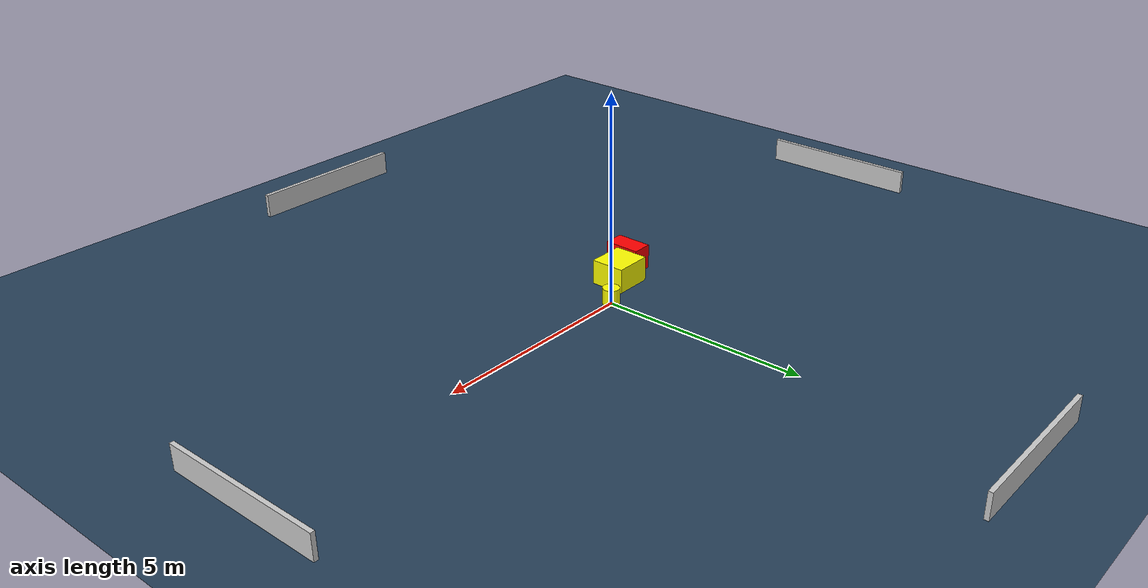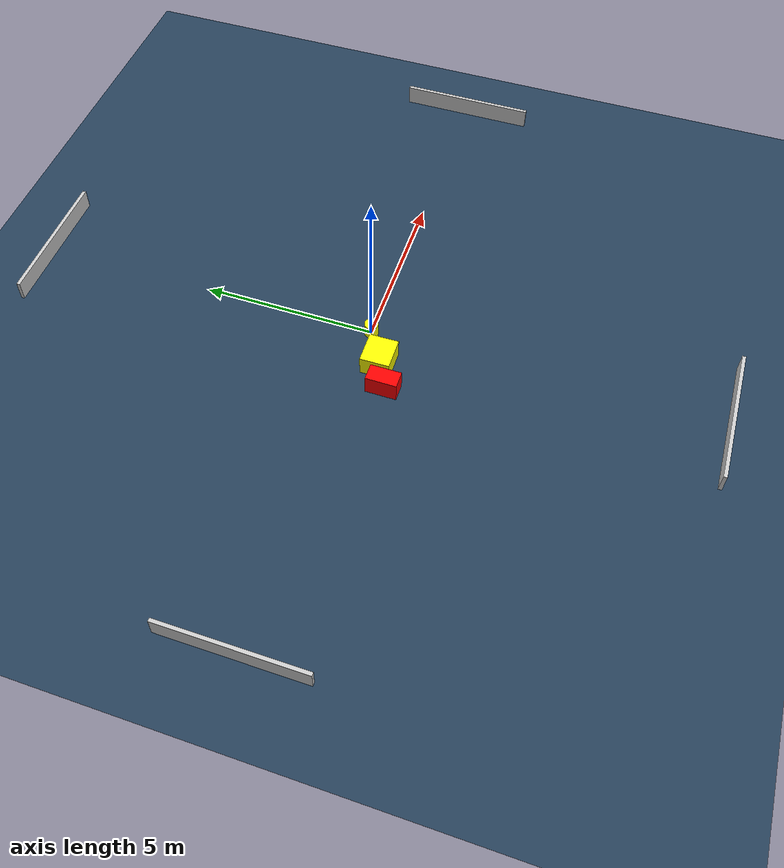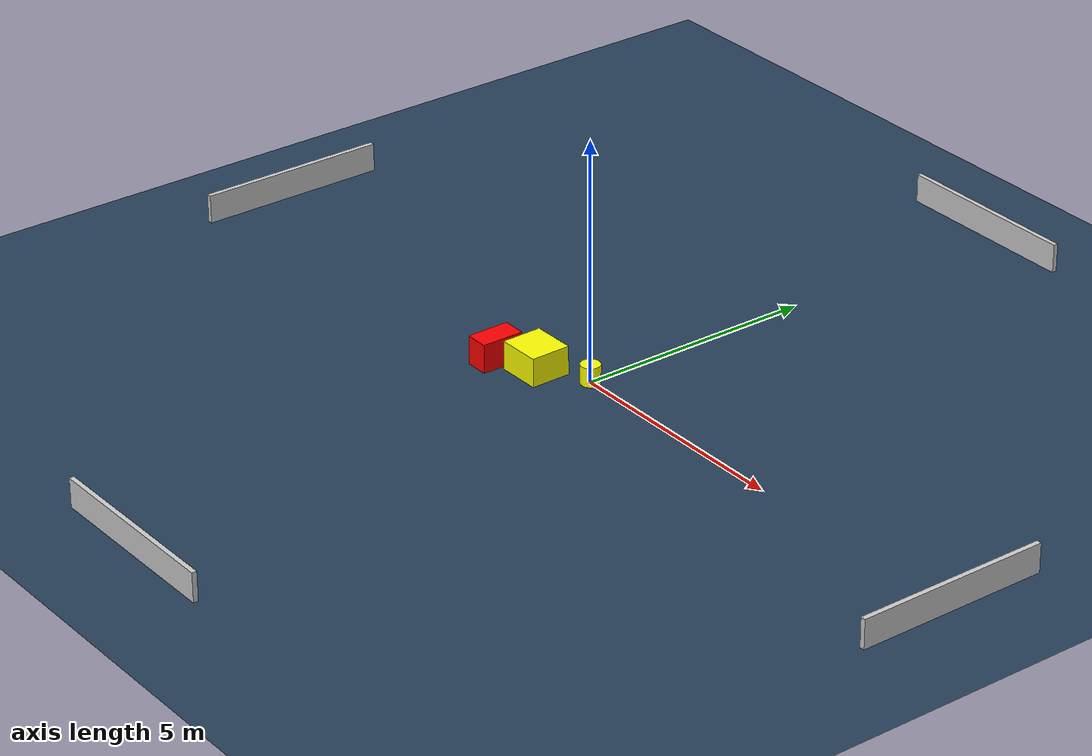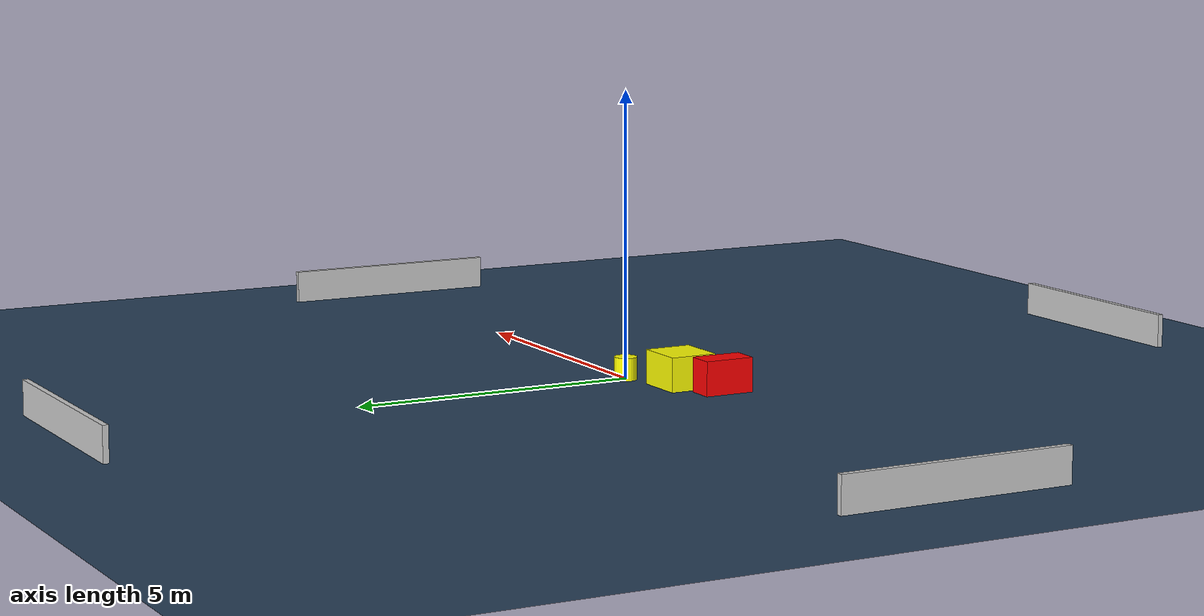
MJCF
<?xml version="1.0" ?>
<mujoco model="generated_environment">
  <option timestep="0.01" integrator="RK4" cone="elliptic"/>
  <default>
    <geom density="1"/>
  </default>
  <asset>
    <texture builtin="gradient" height="3072" name="skybox" rgb1="0.3 0.5 0.7" rgb2="0 0 0" type="skybox" width="512"/>
    <texture builtin="checker" height="300" name="groundplane" rgb1="0.2 0.3 0.4" rgb2="0.1 0.2 0.3" type="2d" width="300"/>
    <material name="groundplane" reflectance="0.2" texrepeat="5 5" texture="groundplane"/>
  </asset>
  <worldbody>
    <light dir="0 0 -1" directional="true" pos="0 0 1.5"/>
    <geom condim="3" friction="0.5 0.005 0.001" material="groundplane" name="floor" pos="0 0 0" size="0 0 0.05" type="plane"/>
    <body name="walls">
      <geom name="wall_1" condim="4" pos="-10.0 0.0 0.3" rgba="0.800000011920929 0.800000011920929 0.800000011920929 1.0" size="0.05 2.0 0.3" type="box"/>
      <geom name="wall_2" condim="4" pos="10.0 0.0 0.3" rgba="0.800000011920929 0.800000011920929 0.800000011920929 1.0" size="0.05 2.0 0.3" type="box"/>
      <geom name="wall_3" condim="4" pos="0.0 -10.0 0.3" rgba="0.800000011920929 0.800000011920929 0.800000011920929 1.0" size="2.0 0.05 0.3" type="box"/>
      <geom name="wall_4" condim="4" pos="0.0 10.0 0.3" rgba="0.800000011920929 0.800000011920929 0.800000011920929 1.0" size="2.0 0.05 0.3" type="box"/>
    </body>
    <body name="robot">
      <joint name="joint_x" type="slide" pos="0 0 0" axis="1 0 0"/>
      <joint name="joint_y" type="slide" pos="0 0 0" axis="0 1 0"/>
      <geom name="robot" type="cylinder" pos="0.0 0.0 0.2" size="0.2 0.2 0.0" mass="5.0" friction="1.0 0.005 0.0001" condim="4" rgba="1.0 1.0 0.0 1.0"/>
    </body>
    <body name="obstacle_1_movable">
      <geom name="obstacle_1_movable" condim="4" pos="-0.9598075908469463 -0.5466655003063392 0.3" euler="0 0 180.5132378231171" friction="0.0 0.005 0.001" rgba="1.0 1.0 0.0 1.0" size="0.45126854157220736 0.418096261824363 0.3" type="box" mass="0.1"/>
      <joint type="free"/>
    </body>
    <body name="obstacle_2_static">
      <geom name="obstacle_2_static" condim="4" pos="-1.7392999805215783 -0.9211131177975604 0.3" euler="0 0 269.7694918746489" friction="0.0 0.005 0.001" rgba="1.0 0.0 0.0 1.0" size="0.44234014594659943 0.243016950446875 0.3" type="box"/>
    </body>
  </worldbody>
  <actuator>
    <motor name="actuator_x" joint="joint_x" gear="1" ctrlrange="-1 1"/>
    <motor name="actuator_y" joint="joint_y" gear="1" ctrlrange="-1 1"/>
  </actuator>
</mujoco>
